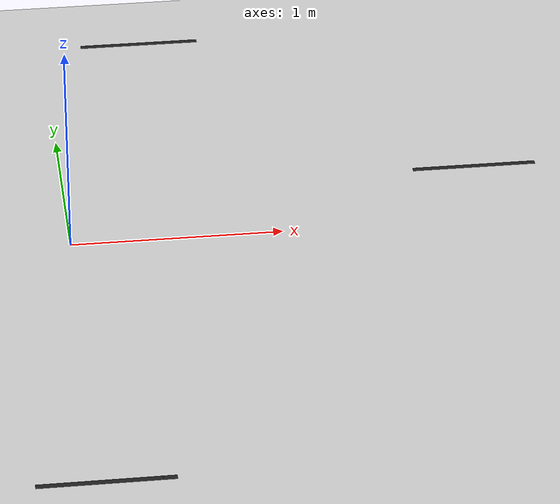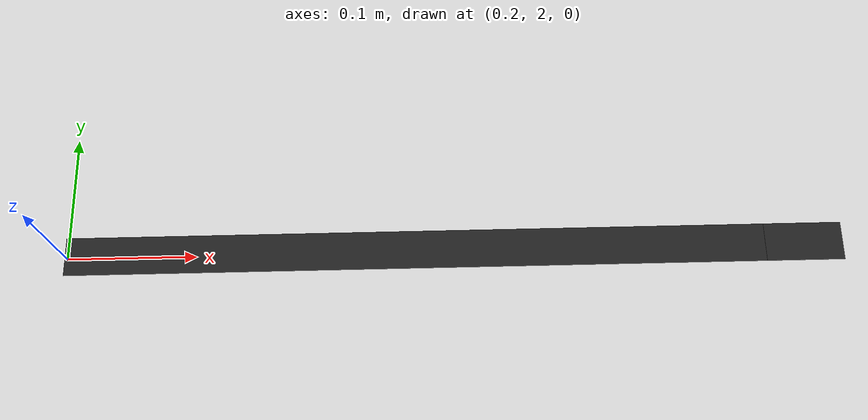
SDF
<sdf version="1.4">
 <world name="default">
  <include><uri>model://sun</uri></include>
  <include><uri>model://ground_plane</uri><name>custom_ground_plane</name></include>
  <physics type="ode">
   <real_time_update_rate>1000.0</real_time_update_rate>
   <max_step_size>0.001</max_step_size>
   <real_time_factor>1</real_time_factor>
   <ode>
    <solver>
     <type>quick</type>
     <iters>150</iters>
     <precon_iters>0</precon_iters>
     <sor>1.400000</sor>
     <use_dynamic_moi_rescaling>1</use_dynamic_moi_rescaling>
    </solver>
    <constraints>
     <cfm>0.00001</cfm>
     <erp>0.2</erp>
     <contact_max_correcting_vel>2000.000000</contact_max_correcting_vel>
     <contact_surface_layer>0.01000</contact_surface_layer>
    </constraints>
   </ode>
  </physics>
  <scene><ambient>0.4 0.4 0.4 1</ambient><background>0.7 0.7 0.7 1</background><shadows>true</shadows></scene>
  <model name="black_line_1">
   <static>true</static>
   <pose>2 0.5 0.007 0 0 0</pose>
   <link name="link">
    <visual name="visual">
     <geometry><box><size>0.6 0.03 0.0001</size></box></geometry>
     <material>
      <script><name>Gazebo/FlatBlack</name></script>
      <ambient>0.01 0.01 0.01 1</ambient>
      <diffuse>0.01 0.01 0.01 1</diffuse>
     </material>
     <laser_retro>100.0</laser_retro>
    </visual>
    <collision name="collision">
     <geometry><box><size>0.6 0.03 0.0001</size></box></geometry>
     <surface>
      <friction><ode><mu>10</mu><mu2>10</mu2><fdir1>0 0 0</fdir1><slip1>0</slip1><slip2>0</slip2></ode></friction>
      <contact><collide_without_contact>true</collide_without_contact></contact>
     </surface>
     <laser_retro>100.0</laser_retro>
    </collision>
   </link>
  </model>
  <model name="stop_line_1">
   <static>true</static>
   <pose>2.27 0.5 0.007 0 0 0</pose>
   <link name="link">
    <visual name="visual">
     <geometry><box><size>0.06 0.03 0.0003</size></box></geometry>
     <material>
      <script><name>Gazebo/FlatBlack</name></script>
      <ambient>1 0.01 0.01 1</ambient>
      <diffuse>1 0.01 0.01 1</diffuse>
      <specular>1 0.01 0.01 1</specular>
      <emissive>1 0.01 0.01 1</emissive>
     </material>
     <laser_retro>10.0</laser_retro>
    </visual>
    <collision name="collision">
     <geometry><box><size>0.06 0.03 0.0003</size></box></geometry>
     <laser_retro>10.0</laser_retro>
    </collision>
   </link>
  </model>
  <model name="black_line_2">
   <static>true</static>
   <pose>0.5 2.0 0.007 0 0 0</pose>
   <link name="link">
    <visual name="visual">
     <geometry><box><size>0.6 0.03 0.0001</size></box></geometry>
     <material>
      <script><name>Gazebo/FlatBlack</name></script>
      <ambient>0.01 0.01 0.01 1</ambient>
      <diffuse>0.01 0.01 0.01 1</diffuse>
     </material>
     <laser_retro>100.0</laser_retro>
    </visual>
    <collision name="collision">
     <geometry><box><size>0.6 0.03 0.0001</size></box></geometry>
     <surface>
      <friction><ode><mu>10</mu><mu2>10</mu2><fdir1>0 0 0</fdir1><slip1>0</slip1><slip2>0</slip2></ode></friction>
      <contact><collide_without_contact>true</collide_without_contact></contact>
     </surface>
     <laser_retro>100.0</laser_retro>
    </collision>
   </link>
  </model>
  <model name="stop_line_2">
   <static>true</static>
   <pose>0.77 2.0 0.007 0 0 0</pose>
   <link name="link">
    <visual name="visual">
     <geometry><box><size>0.06 0.03 0.0003</size></box></geometry>
     <material>
      <script><name>Gazebo/FlatBlack</name></script>
      <ambient>1 0.01 0.01 1</ambient>
      <diffuse>1 0.01 0.01 1</diffuse>
      <specular>1 0.01 0.01 1</specular>
      <emissive>1 0.01 0.01 1</emissive>
     </material>
     <laser_retro>10.0</laser_retro>
    </visual>
    <collision name="collision">
     <geometry><box><size>0.06 0.03 0.0003</size></box></geometry>
     <laser_retro>10.0</laser_retro>
    </collision>
   </link>
  </model>
  <model name="black_line_3">
   <static>true</static>
   <pose>0 -2.0 0.007 0 0 0</pose>
   <link name="link">
    <visual name="visual">
     <geometry><box><size>0.6 0.03 0.0001</size></box></geometry>
     <material>
      <script><name>Gazebo/FlatBlack</name></script>
      <ambient>0.01 0.01 0.01 1</ambient>
      <diffuse>0.01 0.01 0.01 1</diffuse>
     </material>
     <laser_retro>100.0</laser_retro>
    </visual>
    <collision name="collision">
     <geometry><box><size>0.6 0.03 0.0001</size></box></geometry>
     <surface>
      <friction><ode><mu>10</mu><mu2>10</mu2><fdir1>0 0 0</fdir1><slip1>0</slip1><slip2>0</slip2></ode></friction>
      <contact><collide_without_contact>true</collide_without_contact></contact>
     </surface>
     <laser_retro>100.0</laser_retro>
    </collision>
   </link>
  </model>
  <model name="stop_line_3">
   <static>true</static>
   <pose>0.27 -2.0 0.007 0 0 0</pose>
   <link name="link">
    <visual name="visual">
     <geometry><box><size>0.06 0.03 0.0003</size></box></geometry>
     <material>
      <script><name>Gazebo/FlatBlack</name></script>
      <ambient>1 0.01 0.01 1</ambient>
      <diffuse>1 0.01 0.01 1</diffuse>
      <specular>1 0.01 0.01 1</specular>
      <emissive>1 0.01 0.01 1</emissive>
     </material>
     <laser_retro>10.0</laser_retro>
    </visual>
    <collision name="collision">
     <geometry><box><size>0.06 0.03 0.0003</size></box></geometry>
     <laser_retro>10.0</laser_retro>
    </collision>
   </link>
  </model>
 </world>
</sdf>
